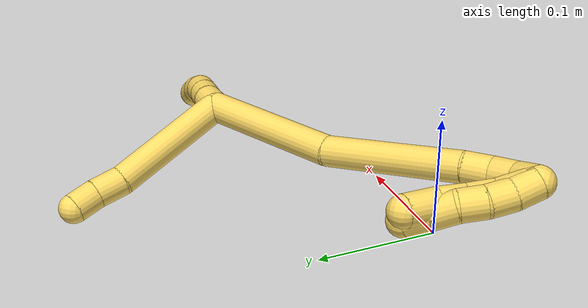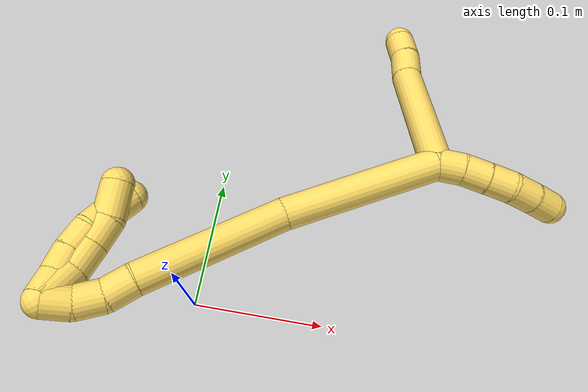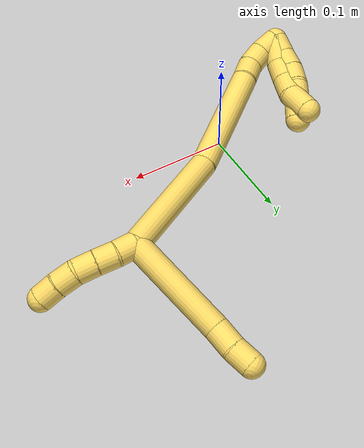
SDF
<sdf version="1.7">
 <world name="default">
  <model name="5">
   <static>0</static>
   <link name="5">
    <collision name="collision-cylinder-e_1_2_8">
     <pose>-0.03969 0.024052 0.023661 -0.793595 -0.866264 0.382784</pose>
     <geometry><cylinder><radius>0.0125</radius><length>0.104185</length></cylinder></geometry>
     <surface>
      <friction><ode><mu>1.16</mu><mu2>1.16</mu2><slip1>0</slip1><slip2>0</slip2></ode></friction>
      <contact><ode><kp>1e+06</kp><kd>1</kd><max_vel>0</max_vel><min_depth>0.001</min_depth></ode></contact>
     </surface>
    </collision>
    <visual name="visual-cylinder-e_1_2_8">
     <pose>-0.03969 0.024052 0.023661 -0.793595 -0.866264 0.382784</pose>
     <geometry><cylinder><radius>0.0125</radius><length>0.104185</length></cylinder></geometry>
     <material><ambient>1 0.858824 0.4 1</ambient></material>
    </visual>
    <collision name="collision-cylinder-e_2_8_9">
     <pose>-0.088431 0.052025 0.054442 -0.503332 -0.839026 0.228345</pose>
     <geometry><cylinder><radius>0.0125</radius><length>0.024331</length></cylinder></geometry>
     <surface>
      <friction><ode><mu>1.16</mu><mu2>1.16</mu2><slip1>0</slip1><slip2>0</slip2></ode></friction>
      <contact><ode><kp>1e+06</kp><kd>1</kd><max_vel>0</max_vel><min_depth>0.001</min_depth></ode></contact>
     </surface>
    </collision>
    <visual name="visual-cylinder-e_2_8_9">
     <pose>-0.088431 0.052025 0.054442 -0.503332 -0.839026 0.228345</pose>
     <geometry><cylinder><radius>0.0125</radius><length>0.024331</length></cylinder></geometry>
     <material><ambient>1 0.858824 0.4 1</ambient></material>
    </visual>
    <collision name="collision-cylinder-e_3_9_6">
     <pose>-0.106295 0.059797 0.066348 -0.677725 -0.962102 0.36386</pose>
     <geometry><cylinder><radius>0.0125</radius><length>0.021484</length></cylinder></geometry>
     <surface>
      <friction><ode><mu>1.16</mu><mu2>1.16</mu2><slip1>0</slip1><slip2>0</slip2></ode></friction>
      <contact><ode><kp>1e+06</kp><kd>1</kd><max_vel>0</max_vel><min_depth>0.001</min_depth></ode></contact>
     </surface>
    </collision>
    <visual name="visual-cylinder-e_3_9_6">
     <pose>-0.106295 0.059797 0.066348 -0.677725 -0.962102 0.36386</pose>
     <geometry><cylinder><radius>0.0125</radius><length>0.021484</length></cylinder></geometry>
     <material><ambient>1 0.858824 0.4 1</ambient></material>
    </visual>
    <collision name="collision-cylinder-e_1_2_10">
     <pose>0.007228 -0.000297 0.006904 0.042964 0.807814 0.018365</pose>
     <geometry><cylinder><radius>0.0125</radius><length>0.02</length></cylinder></geometry>
     <surface>
      <friction><ode><mu>1.16</mu><mu2>1.16</mu2><slip1>0</slip1><slip2>0</slip2></ode></friction>
      <contact><ode><kp>1e+06</kp><kd>1</kd><max_vel>0</max_vel><min_depth>0.001</min_depth></ode></contact>
     </surface>
    </collision>
    <visual name="visual-cylinder-e_1_2_10">
     <pose>0.007228 -0.000297 0.006904 0.042964 0.807814 0.018365</pose>
     <geometry><cylinder><radius>0.0125</radius><length>0.02</length></cylinder></geometry>
     <material><ambient>1 0.858824 0.4 1</ambient></material>
    </visual>
    <collision name="collision-cylinder-e_2_10_11">
     <pose>0.022566 -0.000225 0.019647 -0.063033 0.945912 -0.032261</pose>
     <geometry><cylinder><radius>0.0125</radius><length>0.02</length></cylinder></geometry>
     <surface>
      <friction><ode><mu>1.16</mu><mu2>1.16</mu2><slip1>0</slip1><slip2>0</slip2></ode></friction>
      <contact><ode><kp>1e+06</kp><kd>1</kd><max_vel>0</max_vel><min_depth>0.001</min_depth></ode></contact>
     </surface>
    </collision>
    <visual name="visual-cylinder-e_2_10_11">
     <pose>0.022566 -0.000225 0.019647 -0.063033 0.945912 -0.032261</pose>
     <geometry><cylinder><radius>0.0125</radius><length>0.02</length></cylinder></geometry>
     <material><ambient>1 0.858824 0.4 1</ambient></material>
    </visual>
    <collision name="collision-cylinder-e_3_11_12">
     <pose>0.038721 0.000952 0.03137 -0.136632 0.934867 -0.069044</pose>
     <geometry><cylinder><radius>0.0125</radius><length>0.02</length></cylinder></geometry>
     <surface>
      <friction><ode><mu>1.16</mu><mu2>1.16</mu2><slip1>0</slip1><slip2>0</slip2></ode></friction>
      <contact><ode><kp>1e+06</kp><kd>1</kd><max_vel>0</max_vel><min_depth>0.001</min_depth></ode></contact>
     </surface>
    </collision>
    <visual name="visual-cylinder-e_3_11_12">
     <pose>0.038721 0.000952 0.03137 -0.136632 0.934867 -0.069044</pose>
     <geometry><cylinder><radius>0.0125</radius><length>0.02</length></cylinder></geometry>
     <material><ambient>1 0.858824 0.4 1</ambient></material>
    </visual>
    <collision name="collision-cylinder-e_4_12_13">
     <pose>0.054373 0.005027 0.042864 -0.527154 0.864271 -0.247646</pose>
     <geometry><cylinder><radius>0.0125</radius><length>0.02</length></cylinder></geometry>
     <surface>
      <friction><ode><mu>1.16</mu><mu2>1.16</mu2><slip1>0</slip1><slip2>0</slip2></ode></friction>
      <contact><ode><kp>1e+06</kp><kd>1</kd><max_vel>0</max_vel><min_depth>0.001</min_depth></ode></contact>
     </surface>
    </collision>
    <visual name="visual-cylinder-e_4_12_13">
     <pose>0.054373 0.005027 0.042864 -0.527154 0.864271 -0.247646</pose>
     <geometry><cylinder><radius>0.0125</radius><length>0.02</length></cylinder></geometry>
     <material><ambient>1 0.858824 0.4 1</ambient></material>
    </visual>
    <collision name="collision-cylinder-e_5_13_5">
     <pose>0.069187 0.012578 0.053924 -0.666327 0.804947 -0.292542</pose>
     <geometry><cylinder><radius>0.0125</radius><length>0.02</length></cylinder></geometry>
     <surface>
      <friction><ode><mu>1.16</mu><mu2>1.16</mu2><slip1>0</slip1><slip2>0</slip2></ode></friction>
      <contact><ode><kp>1e+06</kp><kd>1</kd><max_vel>0</max_vel><min_depth>0.001</min_depth></ode></contact>
     </surface>
    </collision>
    <visual name="visual-cylinder-e_5_13_5">
     <pose>0.069187 0.012578 0.053924 -0.666327 0.804947 -0.292542</pose>
     <geometry><cylinder><radius>0.0125</radius><length>0.02</length></cylinder></geometry>
     <material><ambient>1 0.858824 0.4 1</ambient></material>
    </visual>
    <collision name="collision-cylinder-e_1_2_14">
     <pose>-0.017661 0.005229 -0.057701 -3.05123 -0.295874 2.55245</pose>
     <geometry><cylinder><radius>0.0125</radius><length>0.121139</length></cylinder></geometry>
     <surface>
      <friction><ode><mu>1.16</mu><mu2>1.16</mu2><slip1>0</slip1><slip2>0</slip2></ode></friction>
      <contact><ode><kp>1e+06</kp><kd>1</kd><max_vel>0</max_vel><min_depth>0.001</min_depth></ode></contact>
     </surface>
    </collision>
    <visual name="visual-cylinder-e_1_2_14">
     <pose>-0.017661 0.005229 -0.057701 -3.05123 -0.295874 2.55245</pose>
     <geometry><cylinder><radius>0.0125</radius><length>0.121139</length></cylinder></geometry>
     <material><ambient>1 0.858824 0.4 1</ambient></material>
    </visual>
    <collision name="collision-cylinder-e_2_14_15">
     <pose>-0.044607 0.004593 -0.171916 3.0382 -0.161995 -2.00665</pose>
     <geometry><cylinder><radius>0.0125</radius><length>0.115142</length></cylinder></geometry>
     <surface>
      <friction><ode><mu>1.16</mu><mu2>1.16</mu2><slip1>0</slip1><slip2>0</slip2></ode></friction>
      <contact><ode><kp>1e+06</kp><kd>1</kd><max_vel>0</max_vel><min_depth>0.001</min_depth></ode></contact>
     </surface>
    </collision>
    <visual name="visual-cylinder-e_2_14_15">
     <pose>-0.044607 0.004593 -0.171916 3.0382 -0.161995 -2.00665</pose>
     <geometry><cylinder><radius>0.0125</radius><length>0.115142</length></cylinder></geometry>
     <material><ambient>1 0.858824 0.4 1</ambient></material>
    </visual>
    <collision name="collision-cylinder-e_3_15_16">
     <pose>-0.054731 -0.001265 -0.239301 -3.14103 -0.077027 3.12692</pose>
     <geometry><cylinder><radius>0.0125</radius><length>0.021805</length></cylinder></geometry>
     <surface>
      <friction><ode><mu>1.16</mu><mu2>1.16</mu2><slip1>0</slip1><slip2>0</slip2></ode></friction>
      <contact><ode><kp>1e+06</kp><kd>1</kd><max_vel>0</max_vel><min_depth>0.001</min_depth></ode></contact>
     </surface>
    </collision>
    <visual name="visual-cylinder-e_3_15_16">
     <pose>-0.054731 -0.001265 -0.239301 -3.14103 -0.077027 3.12692</pose>
     <geometry><cylinder><radius>0.0125</radius><length>0.021805</length></cylinder></geometry>
     <material><ambient>1 0.858824 0.4 1</ambient></material>
    </visual>
    <collision name="collision-cylinder-e_4_16_17">
     <pose>-0.059414 -0.002181 -0.260006 3.0481 -0.371119 -2.65314</pose>
     <geometry><cylinder><radius>0.0125</radius><length>0.0212</length></cylinder></geometry>
     <surface>
      <friction><ode><mu>1.16</mu><mu2>1.16</mu2><slip1>0</slip1><slip2>0</slip2></ode></friction>
      <contact><ode><kp>1e+06</kp><kd>1</kd><max_vel>0</max_vel><min_depth>0.001</min_depth></ode></contact>
     </surface>
    </collision>
    <visual name="visual-cylinder-e_4_16_17">
     <pose>-0.059414 -0.002181 -0.260006 3.0481 -0.371119 -2.65314</pose>
     <geometry><cylinder><radius>0.0125</radius><length>0.0212</length></cylinder></geometry>
     <material><ambient>1 0.858824 0.4 1</ambient></material>
    </visual>
    <collision name="collision-cylinder-e_5_17_1">
     <pose>-0.069646 -0.005257 -0.277704 2.8742 -0.664601 -2.39832</pose>
     <geometry><cylinder><radius>0.0125</radius><length>0.020713</length></cylinder></geometry>
     <surface>
      <friction><ode><mu>1.16</mu><mu2>1.16</mu2><slip1>0</slip1><slip2>0</slip2></ode></friction>
      <contact><ode><kp>1e+06</kp><kd>1</kd><max_vel>0</max_vel><min_depth>0.001</min_depth></ode></contact>
     </surface>
    </collision>
    <visual name="visual-cylinder-e_5_17_1">
     <pose>-0.069646 -0.005257 -0.277704 2.8742 -0.664601 -2.39832</pose>
     <geometry><cylinder><radius>0.0125</radius><length>0.020713</length></cylinder></geometry>
     <material><ambient>1 0.858824 0.4 1</ambient></material>
    </visual>
    <collision name="collision-cylinder-e_1_1_18">
     <pose>-0.080113 -0.001758 -0.272697 -0.413826 -0.282489 0.059679</pose>
     <geometry><cylinder><radius>0.0125</radius><length>0.029274</length></cylinder></geometry>
     <surface>
      <friction><ode><mu>1.16</mu><mu2>1.16</mu2><slip1>0</slip1><slip2>0</slip2></ode></friction>
      <contact><ode><kp>1e+06</kp><kd>1</kd><max_vel>0</max_vel><min_depth>0.001</min_depth></ode></contact>
     </surface>
    </collision>
    <visual name="visual-cylinder-e_1_1_18">
     <pose>-0.080113 -0.001758 -0.272697 -0.413826 -0.282489 0.059679</pose>
     <geometry><cylinder><radius>0.0125</radius><length>0.029274</length></cylinder></geometry>
     <material><ambient>1 0.858824 0.4 1</ambient></material>
    </visual>
    <collision name="collision-cylinder-e_2_18_19">
     <pose>-0.088974 0.005778 -0.249942 -0.188348 -0.443562 0.04259</pose>
     <geometry><cylinder><radius>0.0125</radius><length>0.022281</length></cylinder></geometry>
     <surface>
      <friction><ode><mu>1.16</mu><mu2>1.16</mu2><slip1>0</slip1><slip2>0</slip2></ode></friction>
      <contact><ode><kp>1e+06</kp><kd>1</kd><max_vel>0</max_vel><min_depth>0.001</min_depth></ode></contact>
     </surface>
    </collision>
    <visual name="visual-cylinder-e_2_18_19">
     <pose>-0.088974 0.005778 -0.249942 -0.188348 -0.443562 0.04259</pose>
     <geometry><cylinder><radius>0.0125</radius><length>0.022281</length></cylinder></geometry>
     <material><ambient>1 0.858824 0.4 1</ambient></material>
    </visual>
    <collision name="collision-cylinder-e_3_19_20">
     <pose>-0.098449 0.008875 -0.23085 -0.131009 -0.467903 0.031264</pose>
     <geometry><cylinder><radius>0.0125</radius><length>0.020813</length></cylinder></geometry>
     <surface>
      <friction><ode><mu>1.16</mu><mu2>1.16</mu2><slip1>0</slip1><slip2>0</slip2></ode></friction>
      <contact><ode><kp>1e+06</kp><kd>1</kd><max_vel>0</max_vel><min_depth>0.001</min_depth></ode></contact>
     </surface>
    </collision>
    <visual name="visual-cylinder-e_3_19_20">
     <pose>-0.098449 0.008875 -0.23085 -0.131009 -0.467903 0.031264</pose>
     <geometry><cylinder><radius>0.0125</radius><length>0.020813</length></cylinder></geometry>
     <material><ambient>1 0.858824 0.4 1</ambient></material>
    </visual>
    <collision name="collision-cylinder-e_4_20_4">
     <pose>-0.11304 0.010864 -0.212033 -0.08049 -0.798652 0.033982</pose>
     <geometry><cylinder><radius>0.0125</radius><length>0.027633</length></cylinder></geometry>
     <surface>
      <friction><ode><mu>1.16</mu><mu2>1.16</mu2><slip1>0</slip1><slip2>0</slip2></ode></friction>
      <contact><ode><kp>1e+06</kp><kd>1</kd><max_vel>0</max_vel><min_depth>0.001</min_depth></ode></contact>
     </surface>
    </collision>
    <visual name="visual-cylinder-e_4_20_4">
     <pose>-0.11304 0.010864 -0.212033 -0.08049 -0.798652 0.033982</pose>
     <geometry><cylinder><radius>0.0125</radius><length>0.027633</length></cylinder></geometry>
     <material><ambient>1 0.858824 0.4 1</ambient></material>
    </visual>
    <collision name="collision-cylinder-e_1_1_21">
     <pose>-0.081185 -0.003419 -0.277982 -0.484511 -0.541175 0.136877</pose>
     <geometry><cylinder><radius>0.0125</radius><length>0.02</length></cylinder></geometry>
     <surface>
      <friction><ode><mu>1.16</mu><mu2>1.16</mu2><slip1>0</slip1><slip2>0</slip2></ode></friction>
      <contact><ode><kp>1e+06</kp><kd>1</kd><max_vel>0</max_vel><min_depth>0.001</min_depth></ode></contact>
     </surface>
    </collision>
    <visual name="visual-cylinder-e_1_1_21">
     <pose>-0.081185 -0.003419 -0.277982 -0.484511 -0.541175 0.136877</pose>
     <geometry><cylinder><radius>0.0125</radius><length>0.02</length></cylinder></geometry>
     <material><ambient>1 0.858824 0.4 1</ambient></material>
    </visual>
    <collision name="collision-cylinder-e_2_21_22">
     <pose>-0.091762 0.002784 -0.262294 -0.26634 -0.573521 0.078967</pose>
     <geometry><cylinder><radius>0.0125</radius><length>0.02</length></cylinder></geometry>
     <surface>
      <friction><ode><mu>1.16</mu><mu2>1.16</mu2><slip1>0</slip1><slip2>0</slip2></ode></friction>
      <contact><ode><kp>1e+06</kp><kd>1</kd><max_vel>0</max_vel><min_depth>0.001</min_depth></ode></contact>
     </surface>
    </collision>
    <visual name="visual-cylinder-e_2_21_22">
     <pose>-0.091762 0.002784 -0.262294 -0.26634 -0.573521 0.078967</pose>
     <geometry><cylinder><radius>0.0125</radius><length>0.02</length></cylinder></geometry>
     <material><ambient>1 0.858824 0.4 1</ambient></material>
    </visual>
    <collision name="collision-cylinder-e_3_22_23">
     <pose>-0.101014 0.006753 -0.24512 -0.191387 -0.392554 0.038167</pose>
     <geometry><cylinder><radius>0.0125</radius><length>0.02</length></cylinder></geometry>
     <surface>
      <friction><ode><mu>1.16</mu><mu2>1.16</mu2><slip1>0</slip1><slip2>0</slip2></ode></friction>
      <contact><ode><kp>1e+06</kp><kd>1</kd><max_vel>0</max_vel><min_depth>0.001</min_depth></ode></contact>
     </surface>
    </collision>
    <visual name="visual-cylinder-e_3_22_23">
     <pose>-0.101014 0.006753 -0.24512 -0.191387 -0.392554 0.038167</pose>
     <geometry><cylinder><radius>0.0125</radius><length>0.02</length></cylinder></geometry>
     <material><ambient>1 0.858824 0.4 1</ambient></material>
    </visual>
    <collision name="collision-cylinder-e_4_23_24">
     <pose>-0.107099 0.012279 -0.227066 -0.397236 -0.227997 0.046081</pose>
     <geometry><cylinder><radius>0.0125</radius><length>0.02</length></cylinder></geometry>
     <surface>
      <friction><ode><mu>1.16</mu><mu2>1.16</mu2><slip1>0</slip1><slip2>0</slip2></ode></friction>
      <contact><ode><kp>1e+06</kp><kd>1</kd><max_vel>0</max_vel><min_depth>0.001</min_depth></ode></contact>
     </surface>
    </collision>
    <visual name="visual-cylinder-e_4_23_24">
     <pose>-0.107099 0.012279 -0.227066 -0.397236 -0.227997 0.046081</pose>
     <geometry><cylinder><radius>0.0125</radius><length>0.02</length></cylinder></geometry>
     <material><ambient>1 0.858824 0.4 1</ambient></material>
    </visual>
    <collision name="collision-cylinder-e_5_24_3">
     <pose>-0.111029 0.019702 -0.208926 -0.379684 -0.167757 0.032308</pose>
     <geometry><cylinder><radius>0.0125</radius><length>0.02</length></cylinder></geometry>
     <surface>
      <friction><ode><mu>1.16</mu><mu2>1.16</mu2><slip1>0</slip1><slip2>0</slip2></ode></friction>
      <contact><ode><kp>1e+06</kp><kd>1</kd><max_vel>0</max_vel><min_depth>0.001</min_depth></ode></contact>
     </surface>
    </collision>
    <visual name="visual-cylinder-e_5_24_3">
     <pose>-0.111029 0.019702 -0.208926 -0.379684 -0.167757 0.032308</pose>
     <geometry><cylinder><radius>0.0125</radius><length>0.02</length></cylinder></geometry>
     <material><ambient>1 0.858824 0.4 1</ambient></material>
    </visual>
    <collision name="collision-sphere-3">
     <pose>-0.112699 0.023356 -0.199769 0 -0 0</pose>
     <geometry><sphere><radius>0.0125</radius></sphere></geometry>
     <surface>
      <friction><ode><mu>1.16</mu><mu2>1.16</mu2><slip1>0</slip1><slip2>0</slip2></ode></friction>
      <contact><ode><kp>1e+06</kp><kd>1</kd><max_vel>0</max_vel><min_depth>0.001</min_depth></ode></contact>
     </surface>
    </collision>
    <visual name="visual-sphere-3">
     <pose>-0.112699 0.023356 -0.199769 0 -0 0</pose>
     <geometry><sphere><radius>0.0125</radius></sphere></geometry>
     <material><ambient>1 0.858824 0.4 1</ambient></material>
    </visual>
    <collision name="collision-sphere-24">
     <pose>-0.10936 0.016047 -0.218084 0 -0 0</pose>
     <geometry><sphere><radius>0.0125</radius></sphere></geometry>
     <surface>
      <friction><ode><mu>1.16</mu><mu2>1.16</mu2><slip1>0</slip1><slip2>0</slip2></ode></friction>
      <contact><ode><kp>1e+06</kp><kd>1</kd><max_vel>0</max_vel><min_depth>0.001</min_depth></ode></contact>
     </surface>
    </collision>
    <visual name="visual-sphere-24">
     <pose>-0.10936 0.016047 -0.218084 0 -0 0</pose>
     <geometry><sphere><radius>0.0125</radius></sphere></geometry>
     <material><ambient>1 0.858824 0.4 1</ambient></material>
    </visual>
    <collision name="collision-sphere-23">
     <pose>-0.104839 0.00851 -0.236049 0 -0 0</pose>
     <geometry><sphere><radius>0.0125</radius></sphere></geometry>
     <surface>
      <friction><ode><mu>1.16</mu><mu2>1.16</mu2><slip1>0</slip1><slip2>0</slip2></ode></friction>
      <contact><ode><kp>1e+06</kp><kd>1</kd><max_vel>0</max_vel><min_depth>0.001</min_depth></ode></contact>
     </surface>
    </collision>
    <visual name="visual-sphere-23">
     <pose>-0.104839 0.00851 -0.236049 0 -0 0</pose>
     <geometry><sphere><radius>0.0125</radius></sphere></geometry>
     <material><ambient>1 0.858824 0.4 1</ambient></material>
    </visual>
    <collision name="collision-sphere-22">
     <pose>-0.097188 0.004995 -0.25419 0 -0 0</pose>
     <geometry><sphere><radius>0.0125</radius></sphere></geometry>
     <surface>
      <friction><ode><mu>1.16</mu><mu2>1.16</mu2><slip1>0</slip1><slip2>0</slip2></ode></friction>
      <contact><ode><kp>1e+06</kp><kd>1</kd><max_vel>0</max_vel><min_depth>0.001</min_depth></ode></contact>
     </surface>
    </collision>
    <visual name="visual-sphere-22">
     <pose>-0.097188 0.004995 -0.25419 0 -0 0</pose>
     <geometry><sphere><radius>0.0125</radius></sphere></geometry>
     <material><ambient>1 0.858824 0.4 1</ambient></material>
    </visual>
    <collision name="collision-sphere-21">
     <pose>-0.086336 0.000573 -0.270398 0 -0 0</pose>
     <geometry><sphere><radius>0.0125</radius></sphere></geometry>
     <surface>
      <friction><ode><mu>1.16</mu><mu2>1.16</mu2><slip1>0</slip1><slip2>0</slip2></ode></friction>
      <contact><ode><kp>1e+06</kp><kd>1</kd><max_vel>0</max_vel><min_depth>0.001</min_depth></ode></contact>
     </surface>
    </collision>
    <visual name="visual-sphere-21">
     <pose>-0.086336 0.000573 -0.270398 0 -0 0</pose>
     <geometry><sphere><radius>0.0125</radius></sphere></geometry>
     <material><ambient>1 0.858824 0.4 1</ambient></material>
    </visual>
    <collision name="collision-sphere-4">
     <pose>-0.122939 0.011639 -0.202425 0 -0 0</pose>
     <geometry><sphere><radius>0.0125</radius></sphere></geometry>
     <surface>
      <friction><ode><mu>1.16</mu><mu2>1.16</mu2><slip1>0</slip1><slip2>0</slip2></ode></friction>
      <contact><ode><kp>1e+06</kp><kd>1</kd><max_vel>0</max_vel><min_depth>0.001</min_depth></ode></contact>
     </surface>
    </collision>
    <visual name="visual-sphere-4">
     <pose>-0.122939 0.011639 -0.202425 0 -0 0</pose>
     <geometry><sphere><radius>0.0125</radius></sphere></geometry>
     <material><ambient>1 0.858824 0.4 1</ambient></material>
    </visual>
    <collision name="collision-sphere-20">
     <pose>-0.103142 0.010089 -0.221641 0 -0 0</pose>
     <geometry><sphere><radius>0.0125</radius></sphere></geometry>
     <surface>
      <friction><ode><mu>1.16</mu><mu2>1.16</mu2><slip1>0</slip1><slip2>0</slip2></ode></friction>
      <contact><ode><kp>1e+06</kp><kd>1</kd><max_vel>0</max_vel><min_depth>0.001</min_depth></ode></contact>
     </surface>
    </collision>
    <visual name="visual-sphere-20">
     <pose>-0.103142 0.010089 -0.221641 0 -0 0</pose>
     <geometry><sphere><radius>0.0125</radius></sphere></geometry>
     <material><ambient>1 0.858824 0.4 1</ambient></material>
    </visual>
    <collision name="collision-sphere-11">
     <pose>0.030676 0.000143 0.025486 0 -0 0</pose>
     <geometry><sphere><radius>0.0125</radius></sphere></geometry>
     <surface>
      <friction><ode><mu>1.16</mu><mu2>1.16</mu2><slip1>0</slip1><slip2>0</slip2></ode></friction>
      <contact><ode><kp>1e+06</kp><kd>1</kd><max_vel>0</max_vel><min_depth>0.001</min_depth></ode></contact>
     </surface>
    </collision>
    <visual name="visual-sphere-11">
     <pose>0.030676 0.000143 0.025486 0 -0 0</pose>
     <geometry><sphere><radius>0.0125</radius></sphere></geometry>
     <material><ambient>1 0.858824 0.4 1</ambient></material>
    </visual>
    <collision name="collision-sphere-10">
     <pose>0.014456 -0.000594 0.013809 0 -0 0</pose>
     <geometry><sphere><radius>0.0125</radius></sphere></geometry>
     <surface>
      <friction><ode><mu>1.16</mu><mu2>1.16</mu2><slip1>0</slip1><slip2>0</slip2></ode></friction>
      <contact><ode><kp>1e+06</kp><kd>1</kd><max_vel>0</max_vel><min_depth>0.001</min_depth></ode></contact>
     </surface>
    </collision>
    <visual name="visual-sphere-10">
     <pose>0.014456 -0.000594 0.013809 0 -0 0</pose>
     <geometry><sphere><radius>0.0125</radius></sphere></geometry>
     <material><ambient>1 0.858824 0.4 1</ambient></material>
    </visual>
    <collision name="collision-sphere-6">
     <pose>-0.115107 0.063648 0.071133 0 -0 0</pose>
     <geometry><sphere><radius>0.0125</radius></sphere></geometry>
     <surface>
      <friction><ode><mu>1.16</mu><mu2>1.16</mu2><slip1>0</slip1><slip2>0</slip2></ode></friction>
      <contact><ode><kp>1e+06</kp><kd>1</kd><max_vel>0</max_vel><min_depth>0.001</min_depth></ode></contact>
     </surface>
    </collision>
    <visual name="visual-sphere-6">
     <pose>-0.115107 0.063648 0.071133 0 -0 0</pose>
     <geometry><sphere><radius>0.0125</radius></sphere></geometry>
     <material><ambient>1 0.858824 0.4 1</ambient></material>
    </visual>
    <collision name="collision-sphere-9">
     <pose>-0.097482 0.055946 0.061563 0 -0 0</pose>
     <geometry><sphere><radius>0.0125</radius></sphere></geometry>
     <surface>
      <friction><ode><mu>1.16</mu><mu2>1.16</mu2><slip1>0</slip1><slip2>0</slip2></ode></friction>
      <contact><ode><kp>1e+06</kp><kd>1</kd><max_vel>0</max_vel><min_depth>0.001</min_depth></ode></contact>
     </surface>
    </collision>
    <visual name="visual-sphere-9">
     <pose>-0.097482 0.055946 0.061563 0 -0 0</pose>
     <geometry><sphere><radius>0.0125</radius></sphere></geometry>
     <material><ambient>1 0.858824 0.4 1</ambient></material>
    </visual>
    <collision name="collision-sphere-2">
     <geometry><sphere><radius>0.0125</radius></sphere></geometry>
     <surface>
      <friction><ode><mu>1.16</mu><mu2>1.16</mu2><slip1>0</slip1><slip2>0</slip2></ode></friction>
      <contact><ode><kp>1e+06</kp><kd>1</kd><max_vel>0</max_vel><min_depth>0.001</min_depth></ode></contact>
     </surface>
    </collision>
    <visual name="visual-sphere-2">
     <geometry><sphere><radius>0.0125</radius></sphere></geometry>
     <material><ambient>1 0.858824 0.4 1</ambient></material>
    </visual>
    <collision name="collision-sphere-19">
     <pose>-0.093755 0.007662 -0.240058 0 -0 0</pose>
     <geometry><sphere><radius>0.0125</radius></sphere></geometry>
     <surface>
      <friction><ode><mu>1.16</mu><mu2>1.16</mu2><slip1>0</slip1><slip2>0</slip2></ode></friction>
      <contact><ode><kp>1e+06</kp><kd>1</kd><max_vel>0</max_vel><min_depth>0.001</min_depth></ode></contact>
     </surface>
    </collision>
    <visual name="visual-sphere-19">
     <pose>-0.093755 0.007662 -0.240058 0 -0 0</pose>
     <geometry><sphere><radius>0.0125</radius></sphere></geometry>
     <material><ambient>1 0.858824 0.4 1</ambient></material>
    </visual>
    <collision name="collision-sphere-8">
     <pose>-0.07938 0.048104 0.047322 0 -0 0</pose>
     <geometry><sphere><radius>0.0125</radius></sphere></geometry>
     <surface>
      <friction><ode><mu>1.16</mu><mu2>1.16</mu2><slip1>0</slip1><slip2>0</slip2></ode></friction>
      <contact><ode><kp>1e+06</kp><kd>1</kd><max_vel>0</max_vel><min_depth>0.001</min_depth></ode></contact>
     </surface>
    </collision>
    <visual name="visual-sphere-8">
     <pose>-0.07938 0.048104 0.047322 0 -0 0</pose>
     <geometry><sphere><radius>0.0125</radius></sphere></geometry>
     <material><ambient>1 0.858824 0.4 1</ambient></material>
    </visual>
    <collision name="collision-sphere-12">
     <pose>0.046767 0.001761 0.037253 0 -0 0</pose>
     <geometry><sphere><radius>0.0125</radius></sphere></geometry>
     <surface>
      <friction><ode><mu>1.16</mu><mu2>1.16</mu2><slip1>0</slip1><slip2>0</slip2></ode></friction>
      <contact><ode><kp>1e+06</kp><kd>1</kd><max_vel>0</max_vel><min_depth>0.001</min_depth></ode></contact>
     </surface>
    </collision>
    <visual name="visual-sphere-12">
     <pose>0.046767 0.001761 0.037253 0 -0 0</pose>
     <geometry><sphere><radius>0.0125</radius></sphere></geometry>
     <material><ambient>1 0.858824 0.4 1</ambient></material>
    </visual>
    <collision name="collision-sphere-13">
     <pose>0.061979 0.008293 0.048475 0 -0 0</pose>
     <geometry><sphere><radius>0.0125</radius></sphere></geometry>
     <surface>
      <friction><ode><mu>1.16</mu><mu2>1.16</mu2><slip1>0</slip1><slip2>0</slip2></ode></friction>
      <contact><ode><kp>1e+06</kp><kd>1</kd><max_vel>0</max_vel><min_depth>0.001</min_depth></ode></contact>
     </surface>
    </collision>
    <visual name="visual-sphere-13">
     <pose>0.061979 0.008293 0.048475 0 -0 0</pose>
     <geometry><sphere><radius>0.0125</radius></sphere></geometry>
     <material><ambient>1 0.858824 0.4 1</ambient></material>
    </visual>
    <collision name="collision-sphere-5">
     <pose>0.076395 0.016862 0.059372 0 -0 0</pose>
     <geometry><sphere><radius>0.0125</radius></sphere></geometry>
     <surface>
      <friction><ode><mu>1.16</mu><mu2>1.16</mu2><slip1>0</slip1><slip2>0</slip2></ode></friction>
      <contact><ode><kp>1e+06</kp><kd>1</kd><max_vel>0</max_vel><min_depth>0.001</min_depth></ode></contact>
     </surface>
    </collision>
    <visual name="visual-sphere-5">
     <pose>0.076395 0.016862 0.059372 0 -0 0</pose>
     <geometry><sphere><radius>0.0125</radius></sphere></geometry>
     <material><ambient>1 0.858824 0.4 1</ambient></material>
    </visual>
    <collision name="collision-sphere-14">
     <pose>-0.035321 0.010457 -0.115402 0 -0 0</pose>
     <geometry><sphere><radius>0.0125</radius></sphere></geometry>
     <surface>
      <friction><ode><mu>1.16</mu><mu2>1.16</mu2><slip1>0</slip1><slip2>0</slip2></ode></friction>
      <contact><ode><kp>1e+06</kp><kd>1</kd><max_vel>0</max_vel><min_depth>0.001</min_depth></ode></contact>
     </surface>
    </collision>
    <visual name="visual-sphere-14">
     <pose>-0.035321 0.010457 -0.115402 0 -0 0</pose>
     <geometry><sphere><radius>0.0125</radius></sphere></geometry>
     <material><ambient>1 0.858824 0.4 1</ambient></material>
    </visual>
    <collision name="collision-sphere-15">
     <pose>-0.053892 -0.001271 -0.22843 0 -0 0</pose>
     <geometry><sphere><radius>0.0125</radius></sphere></geometry>
     <surface>
      <friction><ode><mu>1.16</mu><mu2>1.16</mu2><slip1>0</slip1><slip2>0</slip2></ode></friction>
      <contact><ode><kp>1e+06</kp><kd>1</kd><max_vel>0</max_vel><min_depth>0.001</min_depth></ode></contact>
     </surface>
    </collision>
    <visual name="visual-sphere-15">
     <pose>-0.053892 -0.001271 -0.22843 0 -0 0</pose>
     <geometry><sphere><radius>0.0125</radius></sphere></geometry>
     <material><ambient>1 0.858824 0.4 1</ambient></material>
    </visual>
    <collision name="collision-sphere-16">
     <pose>-0.05557 -0.001258 -0.250171 0 -0 0</pose>
     <geometry><sphere><radius>0.0125</radius></sphere></geometry>
     <surface>
      <friction><ode><mu>1.16</mu><mu2>1.16</mu2><slip1>0</slip1><slip2>0</slip2></ode></friction>
      <contact><ode><kp>1e+06</kp><kd>1</kd><max_vel>0</max_vel><min_depth>0.001</min_depth></ode></contact>
     </surface>
    </collision>
    <visual name="visual-sphere-16">
     <pose>-0.05557 -0.001258 -0.250171 0 -0 0</pose>
     <geometry><sphere><radius>0.0125</radius></sphere></geometry>
     <material><ambient>1 0.858824 0.4 1</ambient></material>
    </visual>
    <collision name="collision-sphere-17">
     <pose>-0.063258 -0.003103 -0.269842 0 -0 0</pose>
     <geometry><sphere><radius>0.0125</radius></sphere></geometry>
     <surface>
      <friction><ode><mu>1.16</mu><mu2>1.16</mu2><slip1>0</slip1><slip2>0</slip2></ode></friction>
      <contact><ode><kp>1e+06</kp><kd>1</kd><max_vel>0</max_vel><min_depth>0.001</min_depth></ode></contact>
     </surface>
    </collision>
    <visual name="visual-sphere-17">
     <pose>-0.063258 -0.003103 -0.269842 0 -0 0</pose>
     <geometry><sphere><radius>0.0125</radius></sphere></geometry>
     <material><ambient>1 0.858824 0.4 1</ambient></material>
    </visual>
    <collision name="collision-sphere-1">
     <pose>-0.076033 -0.007411 -0.285567 0 -0 0</pose>
     <geometry><sphere><radius>0.0125</radius></sphere></geometry>
     <surface>
      <friction><ode><mu>1.16</mu><mu2>1.16</mu2><slip1>0</slip1><slip2>0</slip2></ode></friction>
      <contact><ode><kp>1e+06</kp><kd>1</kd><max_vel>0</max_vel><min_depth>0.001</min_depth></ode></contact>
     </surface>
    </collision>
    <visual name="visual-sphere-1">
     <pose>-0.076033 -0.007411 -0.285567 0 -0 0</pose>
     <geometry><sphere><radius>0.0125</radius></sphere></geometry>
     <material><ambient>1 0.858824 0.4 1</ambient></material>
    </visual>
    <collision name="collision-sphere-18">
     <pose>-0.084193 0.003894 -0.259827 0 -0 0</pose>
     <geometry><sphere><radius>0.0125</radius></sphere></geometry>
     <surface>
      <friction><ode><mu>1.16</mu><mu2>1.16</mu2><slip1>0</slip1><slip2>0</slip2></ode></friction>
      <contact><ode><kp>1e+06</kp><kd>1</kd><max_vel>0</max_vel><min_depth>0.001</min_depth></ode></contact>
     </surface>
    </collision>
    <visual name="visual-sphere-18">
     <pose>-0.084193 0.003894 -0.259827 0 -0 0</pose>
     <geometry><sphere><radius>0.0125</radius></sphere></geometry>
     <material><ambient>1 0.858824 0.4 1</ambient></material>
    </visual>
    <inertial>
     <pose>-0.046989 0.010294 -0.111468 0 -0 0</pose>
     <mass>0.75</mass>
     <inertia>
      <ixx>-0.000129</ixx>
      <ixy>0</ixy>
      <ixz>0</ixz>
      <iyy>0.000297</iyy>
      <iyz>0</iyz>
      <izz>9.7e-05</izz>
     </inertia>
    </inertial>
   </link>
   <pose>0.166741 0.124057 0.060963 -1.59476 0.136898 -0.77176</pose>
  </model>
 </world>
</sdf>
